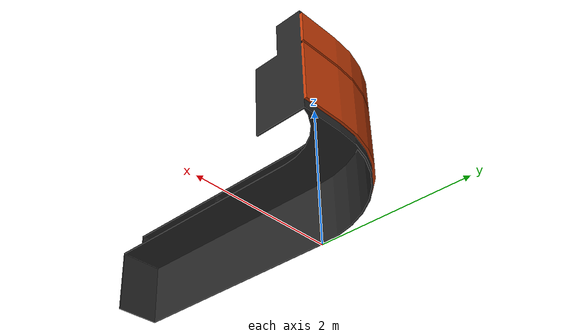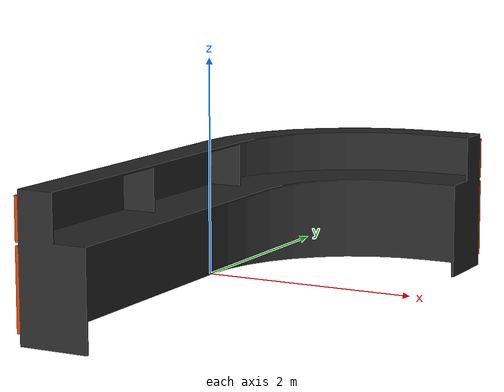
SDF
<?xml version='1.0' ?>
<sdf version='1.6'>
  <model name='reception_desk'>
    <static>true</static>
    <link name='link'>
      <collision name='collision'>
        <geometry>
          <mesh>
            <uri>model://volta_simulation/models/reception_desk/meshes/reception_desk.dae</uri>
          </mesh>
        </geometry>
        <surface>
          <friction>
            <ode>
              <mu>100</mu>
              <mu2>50</mu2>
            </ode>
          </friction>
        </surface>
      </collision>
      <visual name='visual'>
        <geometry>
          <mesh>
            <uri>model://volta_simulation/models/reception_desk/meshes/reception_desk.dae</uri>
          </mesh>
        </geometry>
     </visual>
    </link>
  </model>
</sdf>
